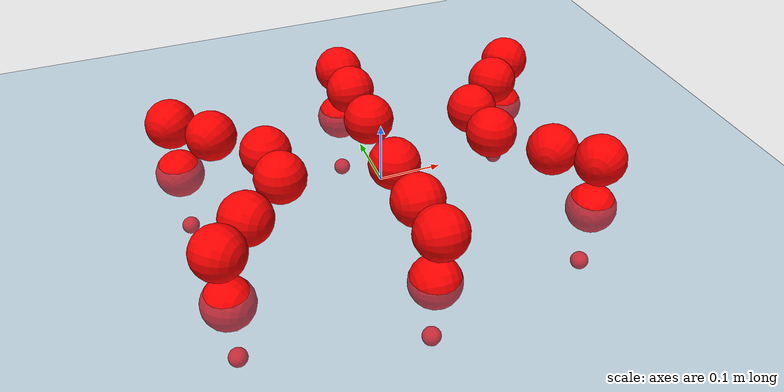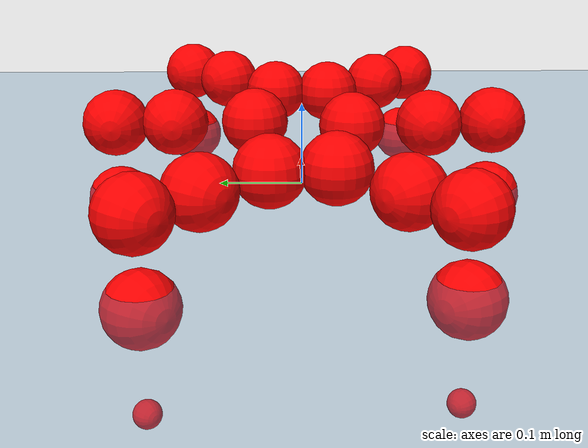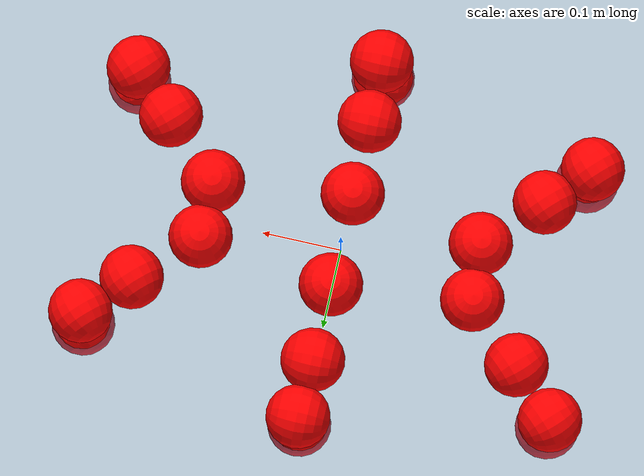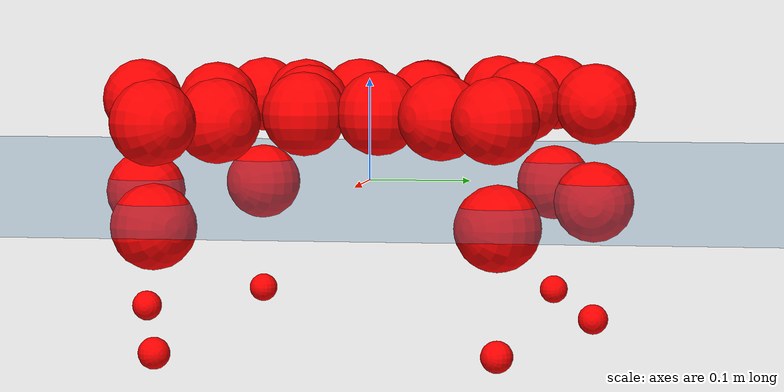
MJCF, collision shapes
<mujoco model="Golem">
  <compiler angle="radian" assetdir="assets" balanceinertia="true" inertiafromgeom="false"/>

  <option timestep="0.005" density="1.2" viscosity="2e-05"/>

  <size nkey="1"/>

  <visual>
    <quality shadowsize="8192"/>
    <map shadowclip="0.5"/>
  </visual>

  <default>
    <default class="/">
      <joint armature="0.01" damping="0.01" frictionloss="0.01"/>
      <geom contype="0" conaffinity="0" group="1" solref="-1000 -80"/>
      <site size="0.01 0.005 0.005" group="5"/>
      <general forcelimited="true" biastype="affine" gainprm="25" biasprm="0 -25 -0.5"/>
      <default class="visual">
        <geom type="mesh" group="2"/>
      </default>
      <default class="collision">
        <geom group="3"/>
      </default>
      <default class="foot">
        <geom size="0.01 0 0" condim="6" group="4" priority="1" solimp="0.015 1 0.01"/>
      </default>
      <default class="reward_collision_sphere">
        <geom group="5" rgba="1 0 0 1"/>
      </default>
    </default>
  </default>

  <asset>
    <texture type="skybox" colorspace="auto" name="//unnamed_texture_0" builtin="gradient" rgb1="0.95 0.95 0.95" rgb2="0.95 0.95 0.95" width="100" height="600"/>
    <texture type="2d" colorspace="auto" name="texplane" builtin="checker" rgb1="0.345 0.575 0.748" rgb2="0.345 0.575 0.748" markrgb="1 1 1" width="512" height="512"/>
    <material name="MatPlane" class="/" texture="texplane" texuniform="true" texrepeat="2 2" specular="0.9"/>
    <mesh name="body" class="/" file="body.stl" scale="0.001 0.001 0.001"/>
    <mesh name="coxa" class="/" file="coxa.stl" scale="0.001 0.001 0.001"/>
    <mesh name="femur" class="/" file="femur.stl" scale="0.001 0.001 0.001"/>
    <mesh name="tibia" class="/" file="tibia.stl" scale="0.001 0.001 0.001"/>
    <mesh name="tarsus" class="/" file="tarsus.stl" scale="0.001 0.001 0.001"/>
  </asset>

  <worldbody>
    <geom name="floor" class="/" size="100 100 0.125" type="plane" group="0" material="MatPlane"/>
    <light name="toplight_shadow" class="/" pos="0 0 5" dir="0.0990148 0.0990148 -0.990148" type="directional" ambient="0.04 0.04 0.04" diffuse="0.55 0.55 0.55" specular="0.12 0.12 0.12"/>
    <light name="toplight_fill" class="/" pos="0 0 5" dir="0.0990148 0.0990148 -0.990148" type="directional" castshadow="false" ambient="0.04 0.04 0.04" diffuse="0.3 0.3 0.3" specular="0.08 0.08 0.08"/>
    <body name="trunk" pos="-0.00179991 -0.000783688 -0.00210083" quat="1 0.000112909 -5.98355e-05 -0.000216481">
      <inertial pos="0.00260987 -0.000551339 -3.71029e-05" quat="0.999902 0.0104506 -0.00805232 -0.00476725" mass="3.71192" diaginertia="0.0140616 0.00167459 0.0254854"/>
      <joint name="//unnamed_joint_0" type="free"/>
      <geom name="//unnamed_geom_1" class="/" pos="0 0 0.0770837" quat="1 0 0 0" type="mesh" rgba="0.9 0.9 0.9 1" mesh="body"/>
      <site name="imu" class="/" pos="0.135792 0.00501493 0.120791" size="0.00992555"/>
      <camera name="track" class="/" pos="0 -1.39193 0" quat="0.707107 0.707107 0 0" mode="trackcom"/>
      <camera name="ego_camera" class="/" pos="0.140045 0 0.120443" quat="-0.5 -0.5 0.5 0.5"/>
      <body name="coxa_RR" pos="-0.189362 -0.0565907 0.075967" quat="0.382529 4.54857e-06 -0.000285001 -0.923943">
        <inertial pos="-0.000798316 -0.00216885 -0.000482666" quat="0.999995 0.00305506 0.000867021 -0.00030491" mass="0.192231" diaginertia="0.0137463 0.00165534 0.0250409"/>
        <joint name="coxa_joint_RR" class="/" pos="0 0 0" axis="-0.00170027 -0.00292323 -0.999994" stiffness="0.00795516" range="-3.14123 3.08487" armature="0.00877614" damping="0.00448336" frictionloss="0.00939481"/>
        <geom name="//unnamed_geom_2" class="/" type="mesh" rgba="0.2 0.2 0.2 1" mesh="coxa"/>
        <geom name="//unnamed_geom_3" class="reward_collision_sphere" size="0.0397022" pos="-0.0323181 0 0"/>
        <body name="femur_RR" pos="0.0626292 0.00189906 -0.00311069" quat="0.50007 -0.499923 0.499783 0.500223">
          <inertial pos="0.000426402 0.00211978 -0.00225546" quat="0.999997 -8.48271e-05 -0.00255183 -0.000279364" mass="0.196756" diaginertia="0.0146207 0.00166248 0.0257354"/>
          <joint name="femur_joint_RR" class="/" pos="0 0 0" axis="0.00186141 0.000311462 -0.999998" range="-3.14366 3.08938" armature="0.0085706" damping="0.00354055" frictionloss="0.0113103"/>
          <geom name="//unnamed_geom_4" class="/" type="mesh" rgba="0.9 0.9 0.9 1" mesh="femur"/>
          <geom name="//unnamed_geom_5" class="reward_collision_sphere" size="0.0397022"/>
          <body name="tibia_RR" pos="0.000476699 -0.0724424 0.00327683" quat="0.000783792 1 -0.000521554 0.00011391">
            <inertial pos="-0.00264925 -0.00232595 -0.000163923" quat="0.9999 -0.0136182 0.00356333 -0.00131488" mass="0.195868" diaginertia="0.0141386 0.00166811 0.0259441"/>
            <joint name="tibia_joint_RR" class="/" pos="0 0 0" axis="-0.000150705 -0.00909529 0.999959" stiffness="0.00584927" range="-3.18506 3.11271" armature="0.00864951" damping="0" frictionloss="0.00941818"/>
            <geom name="//unnamed_geom_6" class="/" type="mesh" rgba="0.2 0.2 0.2 1" mesh="tibia"/>
            <geom name="//unnamed_geom_7" class="reward_collision_sphere" size="0.0397022"/>
            <body name="tarsus_RR" pos="0.0944802 -0.000779671 -0.00203453" quat="1 6.17553e-05 1.38779e-05 2.16676e-05">
              <inertial pos="0.0635338 0.00283487 -0.00266404" quat="0.500663 0.495487 0.501937 0.501884" mass="0.194631" diaginertia="0.0142933 0.00165748 0.0249815"/>
              <joint name="tarsus_joint_RR" class="/" pos="0 0 0" axis="-0.000603143 -0.0025376 0.999997" range="-3.16259 3.13779" armature="0.0114592" damping="0.00329978" frictionloss="0.0113284"/>
              <geom name="//unnamed_geom_8" class="/" type="mesh" rgba="0.9 0.9 0.9 1" mesh="tarsus"/>
              <geom name="foot_1" class="foot" size="0.00876491" pos="0.120654 0 0" quat="0 -0.707107 0 0.707107"/>
              <geom name="//unnamed_geom_10" class="reward_collision_sphere" size="0.0397022"/>
              <geom name="//unnamed_geom_11" class="reward_collision_sphere" size="0.0148883" pos="0.115807 0 0"/>
              <site name="foot_1" class="foot" pos="0.120654 0 0" quat="0 -0.707107 0 0.707107" size="0.00992555"/>
            </body>
          </body>
        </body>
      </body>
      <body name="coxa_RM" pos="0.000600486 -0.0921441 0.0760403" quat="0.707137 0.000123224 0.000945804 -0.707076">
        <inertial pos="-0.00262311 3.11278e-05 -0.00134683" quat="0.999986 0.000171517 0.00304763 0.00422277" mass="0.19043" diaginertia="0.0143641 0.00159292 0.0250371"/>
        <joint name="coxa_joint_RM" class="/" pos="0 0 0" axis="0.000804813 -0.000139822 -1" range="-3.17607 3.13046" armature="0.00946914" damping="0.0132713" frictionloss="0.009837"/>
        <geom name="//unnamed_geom_12" class="/" type="mesh" rgba="0.2 0.2 0.2 1" mesh="coxa"/>
        <geom name="//unnamed_geom_13" class="reward_collision_sphere" size="0.0397022" pos="-0.0323181 0 0"/>
        <body name="femur_RM" pos="0.0602849 -0.000330998 0.00249392" quat="0.500777 -0.500243 0.499981 0.498997">
          <inertial pos="0.00159148 -0.00155866 0.00118003" quat="0.999912 -0.00117563 -0.0131509 -0.00162151" mass="0.201628" diaginertia="0.0150037 0.00163051 0.0265324"/>
          <joint name="femur_joint_RM" class="/" pos="0 0 0" axis="0.00156718 0.00267679 -0.999995" range="-3.14484 3.13105" armature="0.0094918" damping="0.00627358" frictionloss="0.00929467"/>
          <geom name="//unnamed_geom_14" class="/" type="mesh" rgba="0.9 0.9 0.9 1" mesh="femur"/>
          <geom name="//unnamed_geom_15" class="reward_collision_sphere" size="0.0397022"/>
          <body name="tibia_RM" pos="-0.00259753 -0.0763114 0.00186438" quat="6.55244e-05 1 0.000338515 -0.00042651">
            <inertial pos="-0.000950699 0.00147099 -0.000340996" quat="0.999997 -0.00135021 0.00119062 0.0014498" mass="0.201354" diaginertia="0.0148941 0.00167349 0.0267956"/>
            <joint name="tibia_joint_RM" class="/" pos="0 0 0" axis="0.00537031 -0.0103287 0.999932" range="-3.08499 3.11146" armature="0.0109208" damping="0.00214738" frictionloss="0.00962446"/>
            <geom name="//unnamed_geom_16" class="/" type="mesh" rgba="0.2 0.2 0.2 1" mesh="tibia"/>
            <geom name="//unnamed_geom_17" class="reward_collision_sphere" size="0.0397022"/>
            <body name="tarsus_RM" pos="0.0925184 -0.00240674 0.00294977" quat="0.999999 0.00108667 0.000478492 -0.00076419">
              <inertial pos="0.0661064 0.00225538 0.00130358" quat="0.500241 0.501647 0.499284 0.498823" mass="0.184441" diaginertia="0.0139109 0.00156449 0.0238539"/>
              <joint name="tarsus_joint_RM" class="/" pos="0 0 0" axis="-0.010975 0.00519564 0.999926" stiffness="0.00165088" range="-3.14576 3.15197" armature="0.0111105" damping="0.00518183" frictionloss="0.00993726"/>
              <geom name="//unnamed_geom_18" class="/" type="mesh" rgba="0.9 0.9 0.9 1" mesh="tarsus"/>
              <geom name="foot_2" class="foot" size="0.010419" pos="0.120654 0 0" quat="0 -0.707107 0 0.707107"/>
              <geom name="//unnamed_geom_20" class="reward_collision_sphere" size="0.0397022"/>
              <geom name="//unnamed_geom_21" class="reward_collision_sphere" size="0.0148883" pos="0.115807 0 0"/>
              <site name="foot_2" class="foot" pos="0.120654 0 0" quat="0 -0.707107 0 0.707107" size="0.00992555"/>
            </body>
          </body>
        </body>
      </body>
      <body name="coxa_RF" pos="0.194732 -0.0597223 0.0765673" quat="0.923365 -1.91386e-05 0.000129247 -0.383923">
        <inertial pos="-0.0026226 -0.000349811 0.00286364" quat="0.999928 0.00211012 -0.00120952 0.0117314" mass="0.200249" diaginertia="0.0142752 0.00163341 0.024919"/>
        <joint name="coxa_joint_RF" class="/" pos="0 0 0" axis="0.00654927 0.00330325 -0.999973" range="-3.18899 3.13773" armature="0.00840593" damping="0.0197851" frictionloss="0.011216"/>
        <geom name="//unnamed_geom_22" class="/" type="mesh" rgba="0.2 0.2 0.2 1" mesh="coxa"/>
        <geom name="//unnamed_geom_23" class="reward_collision_sphere" size="0.0397022" pos="-0.0323181 0 0"/>
        <body name="femur_RF" pos="0.0658098 0.000374399 -0.00315877" quat="0.500018 -0.500881 0.498989 0.50011">
          <inertial pos="0.00130656 -0.00202614 -0.00094363" quat="0.999986 -0.000410917 -0.00480682 -0.00222283" mass="0.184941" diaginertia="0.0146128 0.00158897 0.0240644"/>
          <joint name="femur_joint_RF" class="/" pos="0 0 0" axis="-8.7755e-06 0.00264125 -0.999997" range="-3.11377 3.09178" armature="0.0092545" damping="0" frictionloss="0.00902437"/>
          <geom name="//unnamed_geom_24" class="/" type="mesh" rgba="0.9 0.9 0.9 1" mesh="femur"/>
          <geom name="//unnamed_geom_25" class="reward_collision_sphere" size="0.0397022"/>
          <body name="tibia_RF" pos="-0.000791177 -0.0727015 0.00204752" quat="-9.51396e-05 1 2.40875e-05 -8.56558e-05">
            <inertial pos="-0.00214269 0.000434921 7.75048e-05" quat="0.999995 -0.00187952 0.000227624 -0.00236296" mass="0.186704" diaginertia="0.0135313 0.00158114 0.0245269"/>
            <joint name="tibia_joint_RF" class="/" pos="0 0 0" axis="0.00812535 0.00964936 0.99992" range="-3.08836 3.12663" armature="0.00989404" damping="0" frictionloss="0.0111472"/>
            <geom name="//unnamed_geom_26" class="/" type="mesh" rgba="0.2 0.2 0.2 1" mesh="tibia"/>
            <geom name="//unnamed_geom_27" class="reward_collision_sphere" size="0.0397022"/>
            <body name="tarsus_RF" pos="0.0943981 0.000624733 -0.00253901" quat="0.999999 -0.000474057 0.000583406 0.00116987">
              <inertial pos="0.0622729 -0.0024766 0.000200833" quat="0.497248 0.500301 0.506059 0.496334" mass="0.189295" diaginertia="0.0141021 0.00164616 0.0240655"/>
              <joint name="tarsus_joint_RF" class="/" pos="0 0 0" axis="0.00665429 0.010417 0.999924" range="-3.138 3.13941" armature="0.0088776" damping="0" frictionloss="0.00857938"/>
              <geom name="//unnamed_geom_28" class="/" type="mesh" rgba="0.9 0.9 0.9 1" mesh="tarsus"/>
              <geom name="foot_3" class="foot" size="0.00985545" pos="0.120654 0 0" quat="0 -0.707107 0 0.707107"/>
              <geom name="//unnamed_geom_30" class="reward_collision_sphere" size="0.0397022"/>
              <geom name="//unnamed_geom_31" class="reward_collision_sphere" size="0.0148883" pos="0.115807 0 0"/>
              <site name="foot_3" class="foot" pos="0.120654 0 0" quat="0 -0.707107 0 0.707107" size="0.00992555"/>
            </body>
          </body>
        </body>
      </body>
      <body name="coxa_LR" pos="-0.194366 0.0592535 0.0748582" quat="0.382679 3.22678e-05 3.37027e-06 0.923882">
        <inertial pos="0.00142709 1.20578e-05 0.0011" quat="0.999939 0.00652319 -0.00369253 0.00807771" mass="0.193707" diaginertia="0.0146133 0.00169421 0.0253562"/>
        <joint name="coxa_joint_LR" class="/" pos="0 0 0" axis="-0.000961561 -0.0152582 -0.999883" stiffness="0.0152978" range="-3.14567 3.1765" armature="0.0113923" damping="0.00636736" frictionloss="0.0104201"/>
        <geom name="//unnamed_geom_32" class="/" type="mesh" rgba="0.2 0.2 0.2 1" mesh="coxa"/>
        <geom name="//unnamed_geom_33" class="reward_collision_sphere" size="0.0397022" pos="-0.0323181 0 0"/>
        <body name="femur_LR" pos="0.0645392 0.00211728 0.00217025" quat="0.500035 -0.500345 0.500672 0.498946">
          <inertial pos="-0.00266528 -0.00229132 0.00222274" quat="1 -4.88568e-05 2.66624e-06 0.000128917" mass="0.206857" diaginertia="0.0153107 0.00173161 0.0258022"/>
          <joint name="femur_joint_LR" class="/" pos="0 0 0" axis="0.00421409 -0.0106031 0.999935" range="-3.19607 3.08242" armature="0.0106185" damping="0" frictionloss="0.00856304"/>
          <geom name="//unnamed_geom_34" class="/" type="mesh" rgba="0.9 0.9 0.9 1" mesh="femur"/>
          <geom name="//unnamed_geom_35" class="reward_collision_sphere" size="0.0397022"/>
          <body name="tibia_LR" pos="0.00163966 -0.078799 -0.00173269" quat="0.000539438 1 -2.69903e-06 0.00026858">
            <inertial pos="-0.000401598 -0.00231974 0.000750515" quat="0.999942 0.00431479 -0.00345026 -0.00925144" mass="0.18204" diaginertia="0.0135554 0.00162129 0.0238193"/>
            <joint name="tibia_joint_LR" class="/" pos="0 0 0" axis="-0.0116219 0.00423539 -0.999923" range="-3.13557 3.08739" armature="0.00986885" damping="0.000240071" frictionloss="0.0113052"/>
            <geom name="//unnamed_geom_36" class="/" type="mesh" rgba="0.2 0.2 0.2 1" mesh="tibia"/>
            <geom name="//unnamed_geom_37" class="reward_collision_sphere" size="0.0397022"/>
            <body name="tarsus_LR" pos="0.0967217 -0.00168982 -0.0023274" quat="0.999999 -0.000608735 -0.000481659 -0.00112811">
              <inertial pos="0.0626963 0.00230338 -0.00273567" quat="0.500131 0.498477 0.499467 0.501918" mass="0.189994" diaginertia="0.0145856 0.00169244 0.0253998"/>
              <joint name="tarsus_joint_LR" class="/" pos="0 0 0" axis="-0.00416192 -0.00687842 -0.999968" range="-3.19837 3.15925" armature="0.00849879" damping="0.028901" frictionloss="0.010116"/>
              <geom name="//unnamed_geom_38" class="/" type="mesh" rgba="0.9 0.9 0.9 1" mesh="tarsus"/>
              <geom name="foot_4" class="foot" size="0.0099058" pos="0.120654 0 0" quat="0.707107 0 -0.707107 0"/>
              <geom name="//unnamed_geom_40" class="reward_collision_sphere" size="0.0397022"/>
              <geom name="//unnamed_geom_41" class="reward_collision_sphere" size="0.0148883" pos="0.115807 0 0"/>
              <site name="foot_4" class="foot" pos="0.120654 0 0" quat="0.707107 0 -0.707107 0" size="0.00992555"/>
            </body>
          </body>
        </body>
      </body>
      <body name="coxa_LM" pos="0.00167597 0.0894066 0.0808627" quat="0.7072 -3.19544e-05 -0.000207721 0.707014">
        <inertial pos="0.00295325 0.000962384 0.00177021" quat="0.999939 -0.0107768 0.00161989 0.00173176" mass="0.190807" diaginertia="0.0151681 0.00161315 0.0256763"/>
        <joint name="coxa_joint_LM" class="/" pos="0 0 0" axis="-0.0090669 0.00688082 -0.999935" range="-3.10356 3.17594" armature="0.00984252" damping="0.00072557" frictionloss="0.0096759"/>
        <geom name="//unnamed_geom_42" class="/" type="mesh" rgba="0.2 0.2 0.2 1" mesh="coxa"/>
        <geom name="//unnamed_geom_43" class="reward_collision_sphere" size="0.0397022" pos="-0.0323181 0 0"/>
        <body name="femur_LM" pos="0.0633109 -0.00084015 -0.000593144" quat="0.498821 -0.500328 0.500663 0.500186">
          <inertial pos="0.00285761 0.00094168 -0.00278897" quat="0.999999 0.000548749 0.000101147 0.00109682" mass="0.20824" diaginertia="0.015092 0.00168643 0.0271632"/>
          <joint name="femur_joint_LM" class="/" pos="0 0 0" axis="-0.00718954 -0.0113169 0.99991" stiffness="0.00770354" range="-3.1881 3.09042" armature="0.010314" damping="0.0114693" frictionloss="0.0113037"/>
          <geom name="//unnamed_geom_44" class="/" type="mesh" rgba="0.9 0.9 0.9 1" mesh="femur"/>
          <geom name="//unnamed_geom_45" class="reward_collision_sphere" size="0.0397022"/>
          <body name="tibia_LM" pos="0.00110966 -0.0717377 -0.0022382" quat="-0.00026733 1 9.57108e-05 -9.79515e-05">
            <inertial pos="0.00297965 0.00103962 -8.66761e-05" quat="0.999983 0.00195796 -0.00260372 0.00483089" mass="0.205523" diaginertia="0.0148837 0.00164464 0.0269672"/>
            <joint name="tibia_joint_LM" class="/" pos="0 0 0" axis="-0.0130216 -0.00400338 -0.999907" range="-3.13421 3.14583" armature="0.00862828" damping="0" frictionloss="0.0099305"/>
            <geom name="//unnamed_geom_46" class="/" type="mesh" rgba="0.2 0.2 0.2 1" mesh="tibia"/>
            <geom name="//unnamed_geom_47" class="reward_collision_sphere" size="0.0397022"/>
            <body name="tarsus_LM" pos="0.0964298 -0.00104369 -0.000763465" quat="1 -1.01556e-05 -2.31819e-05 6.52406e-05">
              <inertial pos="0.0651167 0.000521474 0.00279388" quat="0.508969 0.496541 0.497066 0.497316" mass="0.190761" diaginertia="0.014133 0.00168737 0.0251355"/>
              <joint name="tarsus_joint_LM" class="/" pos="0 0 0" axis="0.00274887 -0.00894651 -0.999956" range="-3.15622 3.13169" armature="0.0103222" damping="0.0163957" frictionloss="0.00984246"/>
              <geom name="//unnamed_geom_48" class="/" type="mesh" rgba="0.9 0.9 0.9 1" mesh="tarsus"/>
              <geom name="foot_5" class="foot" size="0.00936554" pos="0.120654 0 0" quat="0.707107 0 -0.707107 0"/>
              <geom name="//unnamed_geom_50" class="reward_collision_sphere" size="0.0397022"/>
              <geom name="//unnamed_geom_51" class="reward_collision_sphere" size="0.0148883" pos="0.115807 0 0"/>
              <site name="foot_5" class="foot" pos="0.120654 0 0" quat="0.707107 0 -0.707107 0" size="0.00992555"/>
            </body>
          </body>
        </body>
      </body>
      <body name="coxa_LF" pos="0.194071 0.0565416 0.0775372" quat="0.924077 -0.00102552 -0.00014223 0.382205">
        <inertial pos="-0.000537304 0.000608146 0.00290908" quat="1 -0.00062197 -0.000734604 0.000246338" mass="0.192553" diaginertia="0.0147128 0.00157626 0.0249645"/>
        <joint name="coxa_joint_LF" class="/" pos="0 0 0" axis="0.000645935 -0.0155831 -0.999878" range="-3.15433 3.11668" armature="0.00944291" damping="0.0246201" frictionloss="0.00854548"/>
        <geom name="//unnamed_geom_52" class="/" type="mesh" rgba="0.2 0.2 0.2 1" mesh="coxa"/>
        <geom name="//unnamed_geom_53" class="reward_collision_sphere" size="0.0397022" pos="-0.0323181 0 0"/>
        <body name="femur_LF" pos="0.0659508 -0.00196857 0.000367499" quat="0.500178 -0.499393 0.500467 0.499961">
          <inertial pos="0.000240904 -0.000294365 0.00244158" quat="0.999904 0.00100979 0.00340251 0.0134082" mass="0.199381" diaginertia="0.0140327 0.00163701 0.0253404"/>
          <joint name="femur_joint_LF" class="/" pos="0 0 0" axis="-0.0105461 0.0117835 0.999875" range="-3.16235 3.14541" armature="0.00969377" damping="0.00476021" frictionloss="0.0112307"/>
          <geom name="//unnamed_geom_54" class="/" type="mesh" rgba="0.9 0.9 0.9 1" mesh="femur"/>
          <geom name="//unnamed_geom_55" class="reward_collision_sphere" size="0.0397022"/>
          <body name="tibia_LF" pos="-0.000609351 -0.0751715 0.0024902" quat="0.000641248 0.999999 0.000812603 -0.000105773">
            <inertial pos="-0.000486646 -0.000550387 -0.00246347" quat="0.999936 0.00336736 -0.00174923 0.0106394" mass="0.203323" diaginertia="0.0151882 0.0016293 0.0253037"/>
            <joint name="tibia_joint_LF" class="/" pos="0 0 0" axis="-0.00213443 0.000750405 -0.999997" range="-3.10972 3.17528" armature="0.0103695" damping="0.0146186" frictionloss="0.0099888"/>
            <geom name="//unnamed_geom_56" class="/" type="mesh" rgba="0.2 0.2 0.2 1" mesh="tibia"/>
            <geom name="//unnamed_geom_57" class="reward_collision_sphere" size="0.0397022"/>
            <body name="tarsus_LF" pos="0.0965374 0.00324568 -0.00103086" quat="0.999999 0.00070114 -0.000759567 0.000275531">
              <inertial pos="0.0629215 -0.000441611 0.000353396" quat="0.49981 0.499631 0.499702 0.500856" mass="0.183195" diaginertia="0.0136401 0.00152739 0.0250663"/>
              <joint name="tarsus_joint_LF" class="/" pos="0 0 0" axis="-0.0107014 -0.00900277 -0.999902" range="-3.14638 3.08322" armature="0.0113064" damping="0.0230271" frictionloss="0.0107731"/>
              <geom name="//unnamed_geom_58" class="/" type="mesh" rgba="0.9 0.9 0.9 1" mesh="tarsus"/>
              <geom name="foot_6" class="foot" size="0.0100071" pos="0.120654 0 0" quat="0.707107 0 -0.707107 0"/>
              <geom name="//unnamed_geom_60" class="reward_collision_sphere" size="0.0397022"/>
              <geom name="//unnamed_geom_61" class="reward_collision_sphere" size="0.0148883" pos="0.115807 0 0"/>
              <site name="foot_6" class="foot" pos="0.120654 0 0" quat="0.707107 0 -0.707107 0" size="0.00992555"/>
            </body>
          </body>
        </body>
      </body>
    </body>
  </worldbody>

  <contact>
    <pair class="/" geom1="floor" geom2="foot_1" name="//unnamed_contact_0"/>
    <pair class="/" geom1="floor" geom2="foot_2" name="//unnamed_contact_1"/>
    <pair class="/" geom1="floor" geom2="foot_3" name="//unnamed_contact_2"/>
    <pair class="/" geom1="floor" geom2="foot_4" name="//unnamed_contact_3"/>
    <pair class="/" geom1="floor" geom2="foot_5" name="//unnamed_contact_4"/>
    <pair class="/" geom1="floor" geom2="foot_6" name="//unnamed_contact_5"/>
  </contact>

  <actuator>
    <general name="coxa_joint_RR" class="/" joint="coxa_joint_RR" forcerange="-7.95871 7.95871" gainprm="23.4099" biasprm="0 -23.4099 -0.512672"/>
    <general name="femur_joint_RR" class="/" joint="femur_joint_RR" forcerange="-8.01404 8.01404" gainprm="23.4099" biasprm="0 -23.4099 -0.512672"/>
    <general name="tibia_joint_RR" class="/" joint="tibia_joint_RR" forcerange="-6.47827 6.47827" gainprm="23.4099" biasprm="0 -23.4099 -0.512672"/>
    <general name="tarsus_joint_RR" class="/" joint="tarsus_joint_RR" forcerange="-6.49135 6.49135" gainprm="23.4099" biasprm="0 -23.4099 -0.512672"/>
    <general name="coxa_joint_RM" class="/" joint="coxa_joint_RM" forcerange="-6.59145 6.59145" gainprm="23.4099" biasprm="0 -23.4099 -0.512672"/>
    <general name="femur_joint_RM" class="/" joint="femur_joint_RM" forcerange="-7.03372 7.03372" gainprm="23.4099" biasprm="0 -23.4099 -0.512672"/>
    <general name="tibia_joint_RM" class="/" joint="tibia_joint_RM" forcerange="-7.1126 7.1126" gainprm="23.4099" biasprm="0 -23.4099 -0.512672"/>
    <general name="tarsus_joint_RM" class="/" joint="tarsus_joint_RM" forcerange="-7.38505 7.38505" gainprm="23.4099" biasprm="0 -23.4099 -0.512672"/>
    <general name="coxa_joint_RF" class="/" joint="coxa_joint_RF" forcerange="-6.97118 6.97118" gainprm="23.4099" biasprm="0 -23.4099 -0.512672"/>
    <general name="femur_joint_RF" class="/" joint="femur_joint_RF" forcerange="-7.67566 7.67566" gainprm="23.4099" biasprm="0 -23.4099 -0.512672"/>
    <general name="tibia_joint_RF" class="/" joint="tibia_joint_RF" forcerange="-7.8717 7.8717" gainprm="23.4099" biasprm="0 -23.4099 -0.512672"/>
    <general name="tarsus_joint_RF" class="/" joint="tarsus_joint_RF" forcerange="-7.93659 7.93659" gainprm="23.4099" biasprm="0 -23.4099 -0.512672"/>
    <general name="coxa_joint_LR" class="/" joint="coxa_joint_LR" forcerange="-7.16702 7.16702" gainprm="23.4099" biasprm="0 -23.4099 -0.512672"/>
    <general name="femur_joint_LR" class="/" joint="femur_joint_LR" forcerange="-7.36167 7.36167" gainprm="23.4099" biasprm="0 -23.4099 -0.512672"/>
    <general name="tibia_joint_LR" class="/" joint="tibia_joint_LR" forcerange="-7.72879 7.72879" gainprm="23.4099" biasprm="0 -23.4099 -0.512672"/>
    <general name="tarsus_joint_LR" class="/" joint="tarsus_joint_LR" forcerange="-7.87079 7.87079" gainprm="23.4099" biasprm="0 -23.4099 -0.512672"/>
    <general name="coxa_joint_LM" class="/" joint="coxa_joint_LM" forcerange="-7.08479 7.08479" gainprm="23.4099" biasprm="0 -23.4099 -0.512672"/>
    <general name="femur_joint_LM" class="/" joint="femur_joint_LM" forcerange="-7.53259 7.53259" gainprm="23.4099" biasprm="0 -23.4099 -0.512672"/>
    <general name="tibia_joint_LM" class="/" joint="tibia_joint_LM" forcerange="-7.27687 7.27687" gainprm="23.4099" biasprm="0 -23.4099 -0.512672"/>
    <general name="tarsus_joint_LM" class="/" joint="tarsus_joint_LM" forcerange="-6.87676 6.87676" gainprm="23.4099" biasprm="0 -23.4099 -0.512672"/>
    <general name="coxa_joint_LF" class="/" joint="coxa_joint_LF" forcerange="-7.23481 7.23481" gainprm="23.4099" biasprm="0 -23.4099 -0.512672"/>
    <general name="femur_joint_LF" class="/" joint="femur_joint_LF" forcerange="-7.95522 7.95522" gainprm="23.4099" biasprm="0 -23.4099 -0.512672"/>
    <general name="tibia_joint_LF" class="/" joint="tibia_joint_LF" forcerange="-7.99293 7.99293" gainprm="23.4099" biasprm="0 -23.4099 -0.512672"/>
    <general name="tarsus_joint_LF" class="/" joint="tarsus_joint_LF" forcerange="-6.96484 6.96484" gainprm="23.4099" biasprm="0 -23.4099 -0.512672"/>
  </actuator>

  <sensor>
    <gyro site="imu" name="imu_angular_velocity"/>
    <velocimeter site="imu" name="imu_linear_velocity"/>
    <framelinvel objtype="site" objname="foot_1" name="foot_1_global_linear_velocity"/>
    <framelinvel objtype="site" objname="foot_2" name="foot_2_global_linear_velocity"/>
    <framelinvel objtype="site" objname="foot_3" name="foot_3_global_linear_velocity"/>
    <framelinvel objtype="site" objname="foot_4" name="foot_4_global_linear_velocity"/>
    <framelinvel objtype="site" objname="foot_5" name="foot_5_global_linear_velocity"/>
    <framelinvel objtype="site" objname="foot_6" name="foot_6_global_linear_velocity"/>
  </sensor>

  <keyframe>
    <key name="home" qpos="0 0 0.1457 1 0 0 0 0 0 0 0 0 0 0 0 0 0 0 0 0 0 0 0 0 0 0 0 0 0 0 0"/>
  </keyframe>
</mujoco>
